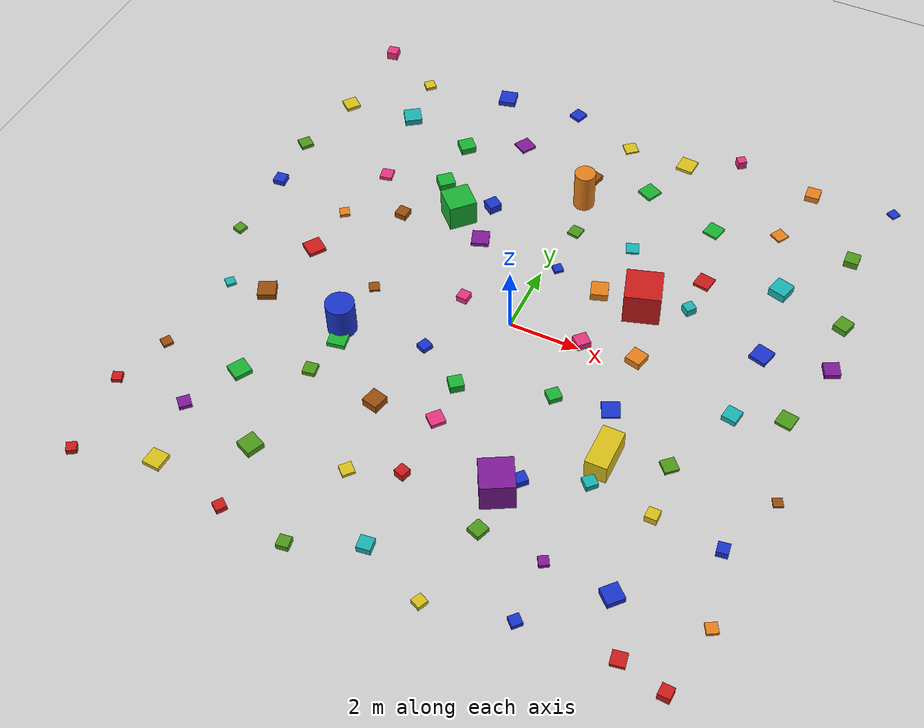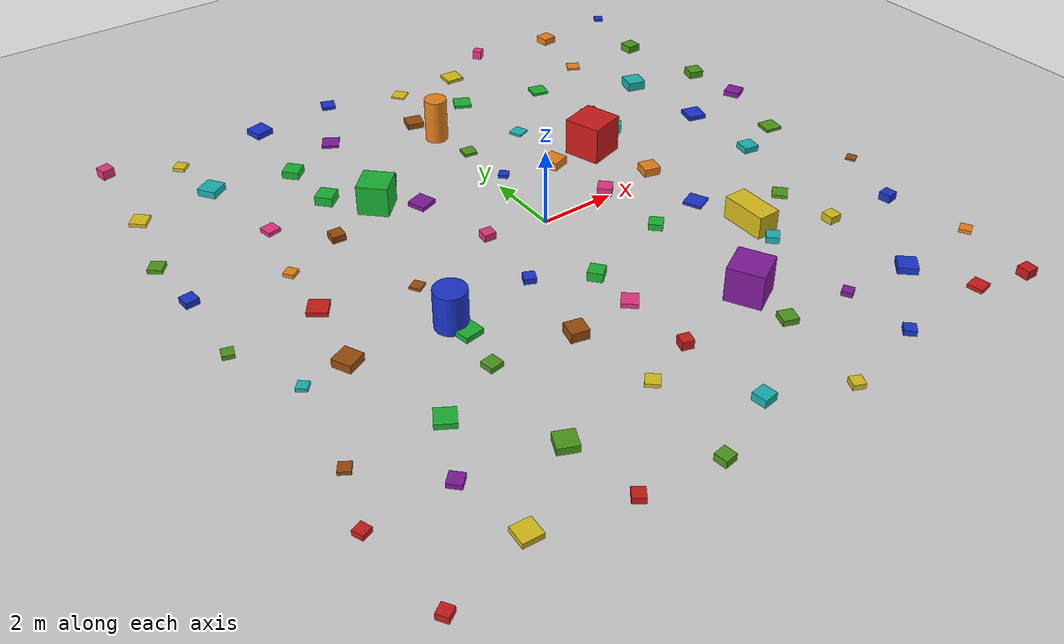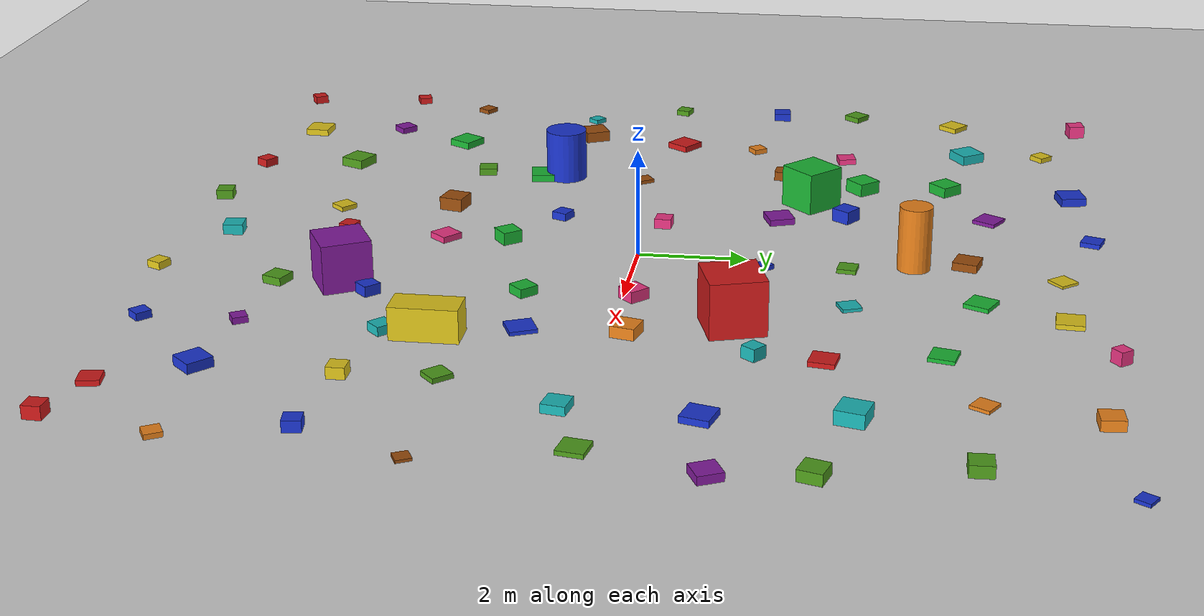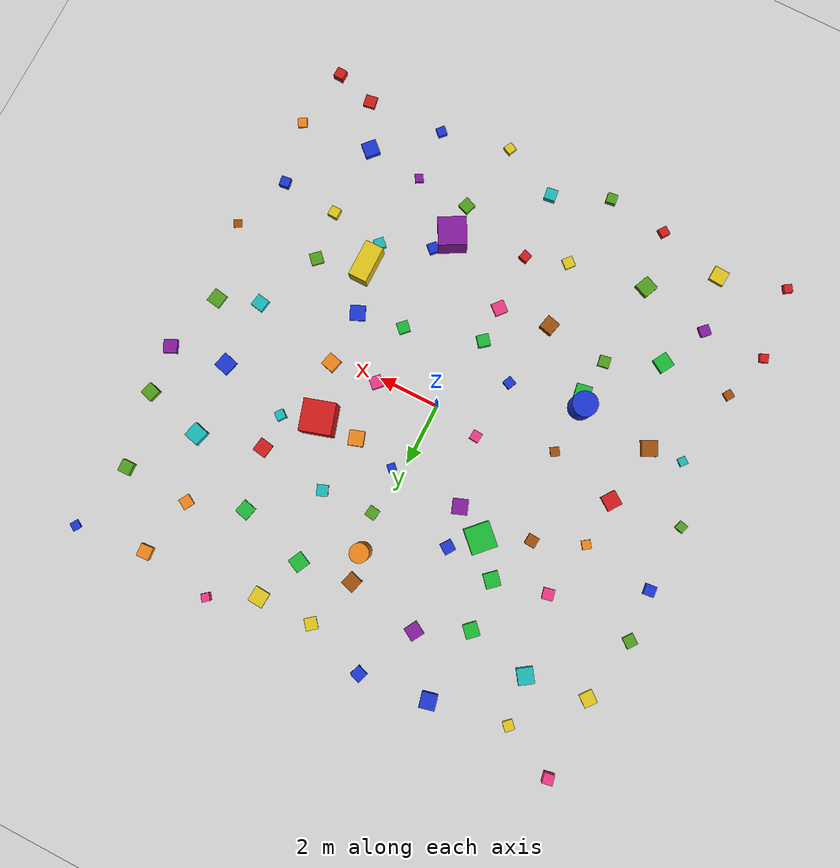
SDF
<?xml version="1.0" ?>
<sdf version="1.6">
  <world name="slam_world">

    <!-- Standard PX4 gazebo-classic SITL physics (250 Hz). Gazebo free-runs (nolockstep build). -->
    <physics name="default_physics" default="0" type="ode">
      <gravity>0 0 -9.8066</gravity>
      <max_step_size>0.004</max_step_size>
      <real_time_factor>1.0</real_time_factor>
      <real_time_update_rate>250</real_time_update_rate>
    </physics>

    <plugin name="gazebo_ros_state" filename="libgazebo_ros_state.so">
      <ros><namespace>/gazebo</namespace></ros>
      <update_rate>50.0</update_rate>
    </plugin>

    <scene>
      <ambient>0.6 0.6 0.6 1</ambient>
      <background>0.7 0.8 0.9 1</background>
      <shadows>true</shadows>
    </scene>

    <light name="sun" type="directional">
      <cast_shadows>true</cast_shadows>
      <pose>0 0 10 0 0 0</pose>
      <diffuse>0.9 0.9 0.9 1</diffuse>
      <specular>0.2 0.2 0.2 1</specular>
      <direction>-0.4 0.3 -0.9</direction>
    </light>

    <!-- ===== textured ground (gives the downward camera trackable features) ===== -->
    <model name="ground_plane">
      <static>true</static>
      <link name="link">
        <collision name="collision">
          <geometry><plane><normal>0 0 1</normal><size>50 50</size></plane></geometry>
          <surface><friction><ode><mu>1.0</mu><mu2>1.0</mu2></ode></friction></surface>
        </collision>
        <visual name="visual">
          <cast_shadows>false</cast_shadows>
          <geometry><plane><normal>0 0 1</normal><size>50 50</size></plane></geometry>
          <material>
            <script>
              <uri>file://media/materials/scripts/gazebo.material</uri>
              <name>Gazebo/CheckerBoard</name>
            </script>
          </material>
        </visual>
      </link>
    </model>

    <!-- ===== scattered features for VO (boxes + cylinders) ===== -->
    <model name="box_red"><static>true</static><pose>3 2 0.5 0 0 0.3</pose><link name="l">
      <collision name="c"><geometry><box><size>1 1 1</size></box></geometry></collision>
      <visual name="v"><geometry><box><size>1 1 1</size></box></geometry>
        <material><ambient>0.8 0.1 0.1 1</ambient><diffuse>0.8 0.1 0.1 1</diffuse></material></visual>
    </link></model>

    <model name="box_green"><static>true</static><pose>-3 3 0.4 0 0 0.8</pose><link name="l">
      <collision name="c"><geometry><box><size>0.8 0.8 0.8</size></box></geometry></collision>
      <visual name="v"><geometry><box><size>0.8 0.8 0.8</size></box></geometry>
        <material><ambient>0.1 0.7 0.2 1</ambient><diffuse>0.1 0.7 0.2 1</diffuse></material></visual>
    </link></model>

    <model name="box_yellow"><static>true</static><pose>4 -3 0.3 0 0 0</pose><link name="l">
      <collision name="c"><geometry><box><size>0.6 1.2 0.6</size></box></geometry></collision>
      <visual name="v"><geometry><box><size>0.6 1.2 0.6</size></box></geometry>
        <material><ambient>0.85 0.75 0.1 1</ambient><diffuse>0.85 0.75 0.1 1</diffuse></material></visual>
    </link></model>

    <model name="cyl_blue"><static>true</static><pose>-4 -2 0.5 0 0 0</pose><link name="l">
      <collision name="c"><geometry><cylinder><radius>0.4</radius><length>1.0</length></cylinder></geometry></collision>
      <visual name="v"><geometry><cylinder><radius>0.4</radius><length>1.0</length></cylinder></geometry>
        <material><ambient>0.1 0.2 0.8 1</ambient><diffuse>0.1 0.2 0.8 1</diffuse></material></visual>
    </link></model>

    <model name="cyl_orange"><static>true</static><pose>0 5 0.6 0 0 0</pose><link name="l">
      <collision name="c"><geometry><cylinder><radius>0.3</radius><length>1.2</length></cylinder></geometry></collision>
      <visual name="v"><geometry><cylinder><radius>0.3</radius><length>1.2</length></cylinder></geometry>
        <material><ambient>0.9 0.5 0.1 1</ambient><diffuse>0.9 0.5 0.1 1</diffuse></material></visual>
    </link></model>

    <model name="box_purple"><static>true</static><pose>2 -5 0.45 0 0 0.5</pose><link name="l">
      <collision name="c"><geometry><box><size>0.9 0.9 0.9</size></box></geometry></collision>
      <visual name="v"><geometry><box><size>0.9 0.9 0.9</size></box></geometry>
        <material><ambient>0.5 0.1 0.6 1</ambient><diffuse>0.5 0.1 0.6 1</diffuse></material></visual>
    </link></model>

    <!-- ===== dense feature field for visual odometry (non-repetitive) ===== -->
    <model name="ft_0"><static>true</static><pose>-8.18 -8.35 0.08 0 0 0.57</pose><link name="l">
      <visual name="v"><geometry><box><size>0.27 0.27 0.16</size></box></geometry>
        <material><ambient>0.8 0.1 0.1 1</ambient><diffuse>0.8 0.1 0.1 1</diffuse></material></visual>
    </link></model>
    <model name="ft_1"><static>true</static><pose>-8.44 -5.99 0.07 0 0 0.38</pose><link name="l">
      <visual name="v"><geometry><box><size>0.27 0.27 0.13</size></box></geometry>
        <material><ambient>0.8 0.1 0.1 1</ambient><diffuse>0.8 0.1 0.1 1</diffuse></material></visual>
    </link></model>
    <model name="ft_2"><static>true</static><pose>-7.95 -4.44 0.05 0 0 0.99</pose><link name="l">
      <visual name="v"><geometry><box><size>0.28 0.28 0.09</size></box></geometry>
        <material><ambient>0.6 0.3 0.05 1</ambient><diffuse>0.6 0.3 0.05 1</diffuse></material></visual>
    </link></model>
    <model name="ft_3"><static>true</static><pose>-7.55 -1.92 0.05 0 0 0.87</pose><link name="l">
      <visual name="v"><geometry><box><size>0.26 0.26 0.09</size></box></geometry>
        <material><ambient>0.1 0.7 0.7 1</ambient><diffuse>0.1 0.7 0.7 1</diffuse></material></visual>
    </link></model>
    <model name="ft_4"><static>true</static><pose>-8.37 -0.08 0.06 0 0 1.28</pose><link name="l">
      <visual name="v"><geometry><box><size>0.28 0.28 0.11</size></box></geometry>
        <material><ambient>0.3 0.6 0.1 1</ambient><diffuse>0.3 0.6 0.1 1</diffuse></material></visual>
    </link></model>
    <model name="ft_5"><static>true</static><pose>-8.32 2.08 0.08 0 0 0.10</pose><link name="l">
      <visual name="v"><geometry><box><size>0.34 0.34 0.16</size></box></geometry>
        <material><ambient>0.1 0.2 0.8 1</ambient><diffuse>0.1 0.2 0.8 1</diffuse></material></visual>
    </link></model>
    <model name="ft_6"><static>true</static><pose>-8.44 3.71 0.06 0 0 0.92</pose><link name="l">
      <visual name="v"><geometry><box><size>0.36 0.36 0.11</size></box></geometry>
        <material><ambient>0.3 0.6 0.1 1</ambient><diffuse>0.3 0.6 0.1 1</diffuse></material></visual>
    </link></model>
    <model name="ft_7"><static>true</static><pose>-8.05 5.80 0.05 0 0 0.90</pose><link name="l">
      <visual name="v"><geometry><box><size>0.42 0.42 0.10</size></box></geometry>
        <material><ambient>0.85 0.75 0.1 1</ambient><diffuse>0.85 0.75 0.1 1</diffuse></material></visual>
    </link></model>
    <model name="ft_8"><static>true</static><pose>-7.97 8.38 0.12 0 0 0.19</pose><link name="l">
      <visual name="v"><geometry><box><size>0.32 0.32 0.25</size></box></geometry>
        <material><ambient>0.9 0.2 0.5 1</ambient><diffuse>0.9 0.2 0.5 1</diffuse></material></visual>
    </link></model>
    <model name="ft_9"><static>true</static><pose>-6.08 -7.74 0.07 0 0 1.51</pose><link name="l">
      <visual name="v"><geometry><box><size>0.48 0.48 0.13</size></box></geometry>
        <material><ambient>0.85 0.75 0.1 1</ambient><diffuse>0.85 0.75 0.1 1</diffuse></material></visual>
    </link></model>
    <model name="ft_10"><static>true</static><pose>-6.42 -5.94 0.06 0 0 0.78</pose><link name="l">
      <visual name="v"><geometry><box><size>0.34 0.34 0.12</size></box></geometry>
        <material><ambient>0.5 0.1 0.6 1</ambient><diffuse>0.5 0.1 0.6 1</diffuse></material></visual>
    </link></model>
    <model name="ft_11"><static>true</static><pose>-5.70 -4.43 0.07 0 0 1.04</pose><link name="l">
      <visual name="v"><geometry><box><size>0.49 0.49 0.14</size></box></geometry>
        <material><ambient>0.1 0.7 0.2 1</ambient><diffuse>0.1 0.7 0.2 1</diffuse></material></visual>
    </link></model>
    <model name="ft_12"><static>true</static><pose>-6.44 -1.80 0.11 0 0 0.45</pose><link name="l">
      <visual name="v"><geometry><box><size>0.50 0.50 0.21</size></box></geometry>
        <material><ambient>0.6 0.3 0.05 1</ambient><diffuse>0.6 0.3 0.05 1</diffuse></material></visual>
    </link></model>
    <model name="ft_13"><static>true</static><pose>-6.11 0.17 0.06 0 0 0.96</pose><link name="l">
      <visual name="v"><geometry><box><size>0.49 0.49 0.12</size></box></geometry>
        <material><ambient>0.8 0.1 0.1 1</ambient><diffuse>0.8 0.1 0.1 1</diffuse></material></visual>
    </link></model>
    <model name="ft_14"><static>true</static><pose>-6.01 1.72 0.05 0 0 0.61</pose><link name="l">
      <visual name="v"><geometry><box><size>0.28 0.28 0.10</size></box></geometry>
        <material><ambient>0.9 0.5 0.1 1</ambient><diffuse>0.9 0.5 0.1 1</diffuse></material></visual>
    </link></model>
    <model name="ft_15"><static>true</static><pose>-5.63 3.58 0.05 0 0 0.21</pose><link name="l">
      <visual name="v"><geometry><box><size>0.35 0.35 0.11</size></box></geometry>
        <material><ambient>0.9 0.2 0.5 1</ambient><diffuse>0.9 0.2 0.5 1</diffuse></material></visual>
    </link></model>
    <model name="ft_16"><static>true</static><pose>-6.07 6.05 0.09 0 0 0.60</pose><link name="l">
      <visual name="v"><geometry><box><size>0.50 0.50 0.19</size></box></geometry>
        <material><ambient>0.1 0.7 0.7 1</ambient><diffuse>0.1 0.7 0.7 1</diffuse></material></visual>
    </link></model>
    <model name="ft_17"><static>true</static><pose>-6.27 7.58 0.05 0 0 0.76</pose><link name="l">
      <visual name="v"><geometry><box><size>0.31 0.31 0.10</size></box></geometry>
        <material><ambient>0.85 0.75 0.1 1</ambient><diffuse>0.85 0.75 0.1 1</diffuse></material></visual>
    </link></model>
    <model name="ft_18"><static>true</static><pose>-3.91 -8.24 0.08 0 0 0.96</pose><link name="l">
      <visual name="v"><geometry><box><size>0.29 0.29 0.16</size></box></geometry>
        <material><ambient>0.8 0.1 0.1 1</ambient><diffuse>0.8 0.1 0.1 1</diffuse></material></visual>
    </link></model>
    <model name="ft_19"><static>true</static><pose>-4.18 -6.37 0.09 0 0 1.16</pose><link name="l">
      <visual name="v"><geometry><box><size>0.49 0.49 0.18</size></box></geometry>
        <material><ambient>0.3 0.6 0.1 1</ambient><diffuse>0.3 0.6 0.1 1</diffuse></material></visual>
    </link></model>
    <model name="ft_20"><static>true</static><pose>-4.04 -3.63 0.06 0 0 0.16</pose><link name="l">
      <visual name="v"><geometry><box><size>0.35 0.35 0.13</size></box></geometry>
        <material><ambient>0.3 0.6 0.1 1</ambient><diffuse>0.3 0.6 0.1 1</diffuse></material></visual>
    </link></model>
    <model name="ft_21"><static>true</static><pose>-3.87 -2.44 0.07 0 0 0.17</pose><link name="l">
      <visual name="v"><geometry><box><size>0.50 0.50 0.14</size></box></geometry>
        <material><ambient>0.1 0.7 0.2 1</ambient><diffuse>0.1 0.7 0.2 1</diffuse></material></visual>
    </link></model>
    <model name="ft_22"><static>true</static><pose>-3.90 -0.40 0.04 0 0 0.57</pose><link name="l">
      <visual name="v"><geometry><box><size>0.29 0.29 0.07</size></box></geometry>
        <material><ambient>0.6 0.3 0.05 1</ambient><diffuse>0.6 0.3 0.05 1</diffuse></material></visual>
    </link></model>
    <model name="ft_23"><static>true</static><pose>-4.47 2.37 0.09 0 0 1.50</pose><link name="l">
      <visual name="v"><geometry><box><size>0.34 0.34 0.18</size></box></geometry>
        <material><ambient>0.6 0.3 0.05 1</ambient><diffuse>0.6 0.3 0.05 1</diffuse></material></visual>
    </link></model>
    <model name="ft_24"><static>true</static><pose>-3.90 3.97 0.12 0 0 0.73</pose><link name="l">
      <visual name="v"><geometry><box><size>0.46 0.46 0.25</size></box></geometry>
        <material><ambient>0.1 0.7 0.2 1</ambient><diffuse>0.1 0.7 0.2 1</diffuse></material></visual>
    </link></model>
    <model name="ft_25"><static>true</static><pose>-4.02 5.59 0.10 0 0 0.75</pose><link name="l">
      <visual name="v"><geometry><box><size>0.44 0.44 0.20</size></box></geometry>
        <material><ambient>0.1 0.7 0.2 1</ambient><diffuse>0.1 0.7 0.2 1</diffuse></material></visual>
    </link></model>
    <model name="ft_26"><static>true</static><pose>-3.81 8.02 0.08 0 0 0.23</pose><link name="l">
      <visual name="v"><geometry><box><size>0.49 0.49 0.16</size></box></geometry>
        <material><ambient>0.1 0.2 0.8 1</ambient><diffuse>0.1 0.2 0.8 1</diffuse></material></visual>
    </link></model>
    <model name="ft_27"><static>true</static><pose>-1.96 -8.47 0.09 0 0 0.14</pose><link name="l">
      <visual name="v"><geometry><box><size>0.32 0.32 0.18</size></box></geometry>
        <material><ambient>0.3 0.6 0.1 1</ambient><diffuse>0.3 0.6 0.1 1</diffuse></material></visual>
    </link></model>
    <model name="ft_28"><static>true</static><pose>-1.65 -5.98 0.05 0 0 0.85</pose><link name="l">
      <visual name="v"><geometry><box><size>0.34 0.34 0.09</size></box></geometry>
        <material><ambient>0.85 0.75 0.1 1</ambient><diffuse>0.85 0.75 0.1 1</diffuse></material></visual>
    </link></model>
    <model name="ft_29"><static>true</static><pose>-2.00 -3.86 0.12 0 0 1.34</pose><link name="l">
      <visual name="v"><geometry><box><size>0.45 0.45 0.25</size></box></geometry>
        <material><ambient>0.6 0.3 0.05 1</ambient><diffuse>0.6 0.3 0.05 1</diffuse></material></visual>
    </link></model>
    <model name="ft_30"><static>true</static><pose>-1.69 -1.68 0.07 0 0 1.15</pose><link name="l">
      <visual name="v"><geometry><box><size>0.30 0.30 0.15</size></box></geometry>
        <material><ambient>0.1 0.2 0.8 1</ambient><diffuse>0.1 0.2 0.8 1</diffuse></material></visual>
    </link></model>
    <model name="ft_31"><static>true</static><pose>-1.51 0.29 0.09 0 0 1.50</pose><link name="l">
      <visual name="v"><geometry><box><size>0.31 0.31 0.19</size></box></geometry>
        <material><ambient>0.9 0.2 0.5 1</ambient><diffuse>0.9 0.2 0.5 1</diffuse></material></visual>
    </link></model>
    <model name="ft_32"><static>true</static><pose>-2.05 2.44 0.06 0 0 0.35</pose><link name="l">
      <visual name="v"><geometry><box><size>0.49 0.49 0.12</size></box></geometry>
        <material><ambient>0.5 0.1 0.6 1</ambient><diffuse>0.5 0.1 0.6 1</diffuse></material></visual>
    </link></model>
    <model name="ft_33"><static>true</static><pose>-2.27 3.70 0.12 0 0 0.96</pose><link name="l">
      <visual name="v"><geometry><box><size>0.37 0.37 0.25</size></box></geometry>
        <material><ambient>0.1 0.2 0.8 1</ambient><diffuse>0.1 0.2 0.8 1</diffuse></material></visual>
    </link></model>
    <model name="ft_34"><static>true</static><pose>-2.50 6.41 0.03 0 0 1.04</pose><link name="l">
      <visual name="v"><geometry><box><size>0.45 0.45 0.07</size></box></geometry>
        <material><ambient>0.5 0.1 0.6 1</ambient><diffuse>0.5 0.1 0.6 1</diffuse></material></visual>
    </link></model>
    <model name="ft_35"><static>true</static><pose>-1.59 8.28 0.04 0 0 1.24</pose><link name="l">
      <visual name="v"><geometry><box><size>0.37 0.37 0.09</size></box></geometry>
        <material><ambient>0.1 0.2 0.8 1</ambient><diffuse>0.1 0.2 0.8 1</diffuse></material></visual>
    </link></model>
    <model name="ft_36"><static>true</static><pose>-0.17 -7.70 0.10 0 0 0.13</pose><link name="l">
      <visual name="v"><geometry><box><size>0.37 0.37 0.20</size></box></geometry>
        <material><ambient>0.1 0.7 0.7 1</ambient><diffuse>0.1 0.7 0.7 1</diffuse></material></visual>
    </link></model>
    <model name="ft_37"><static>true</static><pose>-0.34 -5.51 0.12 0 0 1.27</pose><link name="l">
      <visual name="v"><geometry><box><size>0.29 0.29 0.23</size></box></geometry>
        <material><ambient>0.8 0.1 0.1 1</ambient><diffuse>0.8 0.1 0.1 1</diffuse></material></visual>
    </link></model>
    <model name="ft_38"><static>true</static><pose>-0.35 -3.67 0.06 0 0 0.86</pose><link name="l">
      <visual name="v"><geometry><box><size>0.41 0.41 0.12</size></box></geometry>
        <material><ambient>0.9 0.2 0.5 1</ambient><diffuse>0.9 0.2 0.5 1</diffuse></material></visual>
    </link></model>
    <model name="ft_39"><static>true</static><pose>-0.37 -2.49 0.12 0 0 0.68</pose><link name="l">
      <visual name="v"><geometry><box><size>0.38 0.38 0.24</size></box></geometry>
        <material><ambient>0.1 0.7 0.2 1</ambient><diffuse>0.1 0.7 0.2 1</diffuse></material></visual>
    </link></model>
    <model name="ft_40"><static>true</static><pose>0.37 2.33 0.05 0 0 0.79</pose><link name="l">
      <visual name="v"><geometry><box><size>0.26 0.26 0.09</size></box></geometry>
        <material><ambient>0.1 0.2 0.8 1</ambient><diffuse>0.1 0.2 0.8 1</diffuse></material></visual>
    </link></model>
    <model name="ft_41"><static>true</static><pose>0.26 3.83 0.04 0 0 1.43</pose><link name="l">
      <visual name="v"><geometry><box><size>0.35 0.35 0.08</size></box></geometry>
        <material><ambient>0.3 0.6 0.1 1</ambient><diffuse>0.3 0.6 0.1 1</diffuse></material></visual>
    </link></model>
    <model name="ft_42"><static>true</static><pose>-0.15 5.96 0.08 0 0 1.30</pose><link name="l">
      <visual name="v"><geometry><box><size>0.45 0.45 0.15</size></box></geometry>
        <material><ambient>0.6 0.3 0.05 1</ambient><diffuse>0.6 0.3 0.05 1</diffuse></material></visual>
    </link></model>
    <model name="ft_43"><static>true</static><pose>0.38 7.63 0.03 0 0 0.69</pose><link name="l">
      <visual name="v"><geometry><box><size>0.38 0.38 0.05</size></box></geometry>
        <material><ambient>0.85 0.75 0.1 1</ambient><diffuse>0.85 0.75 0.1 1</diffuse></material></visual>
    </link></model>
    <model name="ft_44"><static>true</static><pose>1.68 -8.50 0.07 0 0 1.14</pose><link name="l">
      <visual name="v"><geometry><box><size>0.29 0.29 0.14</size></box></geometry>
        <material><ambient>0.85 0.75 0.1 1</ambient><diffuse>0.85 0.75 0.1 1</diffuse></material></visual>
    </link></model>
    <model name="ft_45"><static>true</static><pose>2.06 -6.17 0.07 0 0 1.22</pose><link name="l">
      <visual name="v"><geometry><box><size>0.38 0.38 0.15</size></box></geometry>
        <material><ambient>0.3 0.6 0.1 1</ambient><diffuse>0.3 0.6 0.1 1</diffuse></material></visual>
    </link></model>
    <model name="ft_46"><static>true</static><pose>2.38 -4.44 0.10 0 0 0.80</pose><link name="l">
      <visual name="v"><geometry><box><size>0.32 0.32 0.20</size></box></geometry>
        <material><ambient>0.1 0.2 0.8 1</ambient><diffuse>0.1 0.2 0.8 1</diffuse></material></visual>
    </link></model>
    <model name="ft_47"><static>true</static><pose>2.06 -1.74 0.09 0 0 0.79</pose><link name="l">
      <visual name="v"><geometry><box><size>0.36 0.36 0.17</size></box></geometry>
        <material><ambient>0.1 0.7 0.2 1</ambient><diffuse>0.1 0.7 0.2 1</diffuse></material></visual>
    </link></model>
    <model name="ft_48"><static>true</static><pose>2.01 0.19 0.11 0 0 0.80</pose><link name="l">
      <visual name="v"><geometry><box><size>0.38 0.38 0.21</size></box></geometry>
        <material><ambient>0.9 0.2 0.5 1</ambient><diffuse>0.9 0.2 0.5 1</diffuse></material></visual>
    </link></model>
    <model name="ft_49"><static>true</static><pose>1.75 2.02 0.11 0 0 0.32</pose><link name="l">
      <visual name="v"><geometry><box><size>0.48 0.48 0.23</size></box></geometry>
        <material><ambient>0.9 0.5 0.1 1</ambient><diffuse>0.9 0.5 0.1 1</diffuse></material></visual>
    </link></model>
    <model name="ft_50"><static>true</static><pose>1.95 3.92 0.03 0 0 0.38</pose><link name="l">
      <visual name="v"><geometry><box><size>0.36 0.36 0.06</size></box></geometry>
        <material><ambient>0.1 0.7 0.7 1</ambient><diffuse>0.1 0.7 0.7 1</diffuse></material></visual>
    </link></model>
    <model name="ft_51"><static>true</static><pose>1.57 6.17 0.04 0 0 1.12</pose><link name="l">
      <visual name="v"><geometry><box><size>0.47 0.47 0.08</size></box></geometry>
        <material><ambient>0.1 0.7 0.2 1</ambient><diffuse>0.1 0.7 0.2 1</diffuse></material></visual>
    </link></model>
    <model name="ft_52"><static>true</static><pose>2.16 7.64 0.05 0 0 1.50</pose><link name="l">
      <visual name="v"><geometry><box><size>0.49 0.49 0.09</size></box></geometry>
        <material><ambient>0.85 0.75 0.1 1</ambient><diffuse>0.85 0.75 0.1 1</diffuse></material></visual>
    </link></model>
    <model name="ft_53"><static>true</static><pose>3.90 -8.01 0.07 0 0 0.81</pose><link name="l">
      <visual name="v"><geometry><box><size>0.29 0.29 0.14</size></box></geometry>
        <material><ambient>0.1 0.2 0.8 1</ambient><diffuse>0.1 0.2 0.8 1</diffuse></material></visual>
    </link></model>
    <model name="ft_54"><static>true</static><pose>3.84 -6.30 0.06 0 0 0.53</pose><link name="l">
      <visual name="v"><geometry><box><size>0.27 0.27 0.12</size></box></geometry>
        <material><ambient>0.5 0.1 0.6 1</ambient><diffuse>0.5 0.1 0.6 1</diffuse></material></visual>
    </link></model>
    <model name="ft_55"><static>true</static><pose>3.96 -3.80 0.09 0 0 0.80</pose><link name="l">
      <visual name="v"><geometry><box><size>0.33 0.33 0.17</size></box></geometry>
        <material><ambient>0.1 0.7 0.7 1</ambient><diffuse>0.1 0.7 0.7 1</diffuse></material></visual>
    </link></model>
    <model name="ft_56"><static>true</static><pose>3.56 -1.51 0.04 0 0 0.42</pose><link name="l">
      <visual name="v"><geometry><box><size>0.49 0.49 0.07</size></box></geometry>
        <material><ambient>0.1 0.2 0.8 1</ambient><diffuse>0.1 0.2 0.8 1</diffuse></material></visual>
    </link></model>
    <model name="ft_57"><static>true</static><pose>3.54 0.28 0.11 0 0 1.33</pose><link name="l">
      <visual name="v"><geometry><box><size>0.44 0.44 0.21</size></box></geometry>
        <material><ambient>0.9 0.5 0.1 1</ambient><diffuse>0.9 0.5 0.1 1</diffuse></material></visual>
    </link></model>
    <model name="ft_58"><static>true</static><pose>4.18 2.45 0.12 0 0 0.90</pose><link name="l">
      <visual name="v"><geometry><box><size>0.29 0.29 0.23</size></box></geometry>
        <material><ambient>0.1 0.7 0.7 1</ambient><diffuse>0.1 0.7 0.7 1</diffuse></material></visual>
    </link></model>
    <model name="ft_59"><static>true</static><pose>4.20 3.59 0.04 0 0 1.41</pose><link name="l">
      <visual name="v"><geometry><box><size>0.45 0.45 0.09</size></box></geometry>
        <material><ambient>0.8 0.1 0.1 1</ambient><diffuse>0.8 0.1 0.1 1</diffuse></material></visual>
    </link></model>
    <model name="ft_60"><static>true</static><pose>3.77 5.52 0.03 0 0 1.34</pose><link name="l">
      <visual name="v"><geometry><box><size>0.45 0.45 0.07</size></box></geometry>
        <material><ambient>0.1 0.7 0.2 1</ambient><diffuse>0.1 0.7 0.2 1</diffuse></material></visual>
    </link></model>
    <model name="ft_61"><static>true</static><pose>3.57 8.36 0.12 0 0 0.66</pose><link name="l">
      <visual name="v"><geometry><box><size>0.25 0.25 0.25</size></box></geometry>
        <material><ambient>0.9 0.2 0.5 1</ambient><diffuse>0.9 0.2 0.5 1</diffuse></material></visual>
    </link></model>
    <model name="ft_62"><static>true</static><pose>6.42 -7.88 0.05 0 0 0.17</pose><link name="l">
      <visual name="v"><geometry><box><size>0.38 0.38 0.10</size></box></geometry>
        <material><ambient>0.8 0.1 0.1 1</ambient><diffuse>0.8 0.1 0.1 1</diffuse></material></visual>
    </link></model>
    <model name="ft_63"><static>true</static><pose>5.66 -6.45 0.09 0 0 0.83</pose><link name="l">
      <visual name="v"><geometry><box><size>0.48 0.48 0.18</size></box></geometry>
        <material><ambient>0.1 0.2 0.8 1</ambient><diffuse>0.1 0.2 0.8 1</diffuse></material></visual>
    </link></model>
    <model name="ft_64"><static>true</static><pose>5.71 -4.05 0.11 0 0 1.56</pose><link name="l">
      <visual name="v"><geometry><box><size>0.32 0.32 0.21</size></box></geometry>
        <material><ambient>0.85 0.75 0.1 1</ambient><diffuse>0.85 0.75 0.1 1</diffuse></material></visual>
    </link></model>
    <model name="ft_65"><static>true</static><pose>5.54 -2.48 0.04 0 0 0.75</pose><link name="l">
      <visual name="v"><geometry><box><size>0.39 0.39 0.09</size></box></geometry>
        <material><ambient>0.3 0.6 0.1 1</ambient><diffuse>0.3 0.6 0.1 1</diffuse></material></visual>
    </link></model>
    <model name="ft_66"><static>true</static><pose>6.43 -0.39 0.08 0 0 1.40</pose><link name="l">
      <visual name="v"><geometry><box><size>0.41 0.41 0.16</size></box></geometry>
        <material><ambient>0.1 0.7 0.7 1</ambient><diffuse>0.1 0.7 0.7 1</diffuse></material></visual>
    </link></model>
    <model name="ft_67"><static>true</static><pose>6.47 1.81 0.06 0 0 1.31</pose><link name="l">
      <visual name="v"><geometry><box><size>0.50 0.50 0.12</size></box></geometry>
        <material><ambient>0.1 0.2 0.8 1</ambient><diffuse>0.1 0.2 0.8 1</diffuse></material></visual>
    </link></model>
    <model name="ft_68"><static>true</static><pose>6.21 4.14 0.12 0 0 1.31</pose><link name="l">
      <visual name="v"><geometry><box><size>0.50 0.50 0.25</size></box></geometry>
        <material><ambient>0.1 0.7 0.7 1</ambient><diffuse>0.1 0.7 0.7 1</diffuse></material></visual>
    </link></model>
    <model name="ft_69"><static>true</static><pose>5.51 6.13 0.03 0 0 1.04</pose><link name="l">
      <visual name="v"><geometry><box><size>0.36 0.36 0.06</size></box></geometry>
        <material><ambient>0.9 0.5 0.1 1</ambient><diffuse>0.9 0.5 0.1 1</diffuse></material></visual>
    </link></model>
    <model name="ft_70"><static>true</static><pose>5.88 8.01 0.09 0 0 0.07</pose><link name="l">
      <visual name="v"><geometry><box><size>0.40 0.40 0.19</size></box></geometry>
        <material><ambient>0.9 0.5 0.1 1</ambient><diffuse>0.9 0.5 0.1 1</diffuse></material></visual>
    </link></model>
    <model name="ft_71"><static>true</static><pose>7.69 -8.23 0.12 0 0 1.53</pose><link name="l">
      <visual name="v"><geometry><box><size>0.32 0.32 0.24</size></box></geometry>
        <material><ambient>0.8 0.1 0.1 1</ambient><diffuse>0.8 0.1 0.1 1</diffuse></material></visual>
    </link></model>
    <model name="ft_72"><static>true</static><pose>8.05 -6.26 0.04 0 0 0.53</pose><link name="l">
      <visual name="v"><geometry><box><size>0.30 0.30 0.09</size></box></geometry>
        <material><ambient>0.9 0.5 0.1 1</ambient><diffuse>0.9 0.5 0.1 1</diffuse></material></visual>
    </link></model>
    <model name="ft_73"><static>true</static><pose>7.58 -4.22 0.10 0 0 0.14</pose><link name="l">
      <visual name="v"><geometry><box><size>0.31 0.31 0.21</size></box></geometry>
        <material><ambient>0.1 0.2 0.8 1</ambient><diffuse>0.1 0.2 0.8 1</diffuse></material></visual>
    </link></model>
    <model name="ft_74"><static>true</static><pose>8.32 -2.36 0.03 0 0 0.48</pose><link name="l">
      <visual name="v"><geometry><box><size>0.26 0.26 0.05</size></box></geometry>
        <material><ambient>0.6 0.3 0.05 1</ambient><diffuse>0.6 0.3 0.05 1</diffuse></material></visual>
    </link></model>
    <model name="ft_75"><static>true</static><pose>7.73 0.09 0.04 0 0 1.40</pose><link name="l">
      <visual name="v"><geometry><box><size>0.46 0.46 0.08</size></box></geometry>
        <material><ambient>0.3 0.6 0.1 1</ambient><diffuse>0.3 0.6 0.1 1</diffuse></material></visual>
    </link></model>
    <model name="ft_76"><static>true</static><pose>8.28 2.10 0.07 0 0 0.45</pose><link name="l">
      <visual name="v"><geometry><box><size>0.43 0.43 0.15</size></box></geometry>
        <material><ambient>0.5 0.1 0.6 1</ambient><diffuse>0.5 0.1 0.6 1</diffuse></material></visual>
    </link></model>
    <model name="ft_77"><static>true</static><pose>8.12 3.64 0.10 0 0 1.28</pose><link name="l">
      <visual name="v"><geometry><box><size>0.41 0.41 0.20</size></box></geometry>
        <material><ambient>0.3 0.6 0.1 1</ambient><diffuse>0.3 0.6 0.1 1</diffuse></material></visual>
    </link></model>
    <model name="ft_78"><static>true</static><pose>7.64 6.02 0.11 0 0 0.03</pose><link name="l">
      <visual name="v"><geometry><box><size>0.39 0.39 0.21</size></box></geometry>
        <material><ambient>0.3 0.6 0.1 1</ambient><diffuse>0.3 0.6 0.1 1</diffuse></material></visual>
    </link></model>
    <model name="ft_79"><static>true</static><pose>8.19 8.30 0.03 0 0 1.00</pose><link name="l">
      <visual name="v"><geometry><box><size>0.27 0.27 0.06</size></box></geometry>
        <material><ambient>0.1 0.2 0.8 1</ambient><diffuse>0.1 0.2 0.8 1</diffuse></material></visual>
    </link></model>

    <gui><camera name="user_camera"><pose>-8 -8 6 0 0.4 0.785</pose></camera></gui>

  </world>
</sdf>
